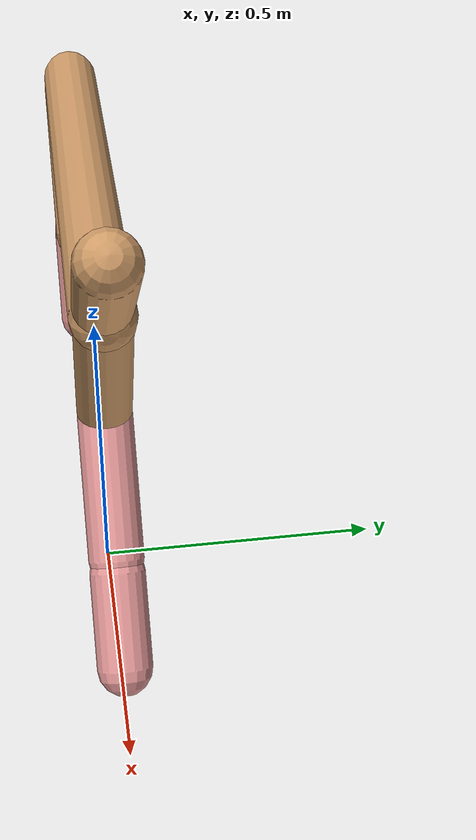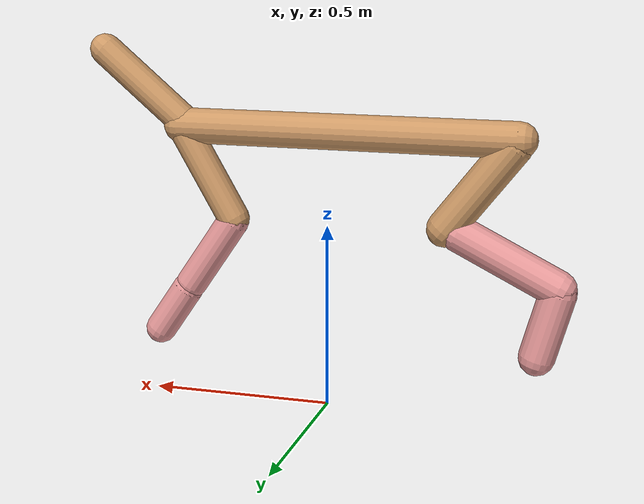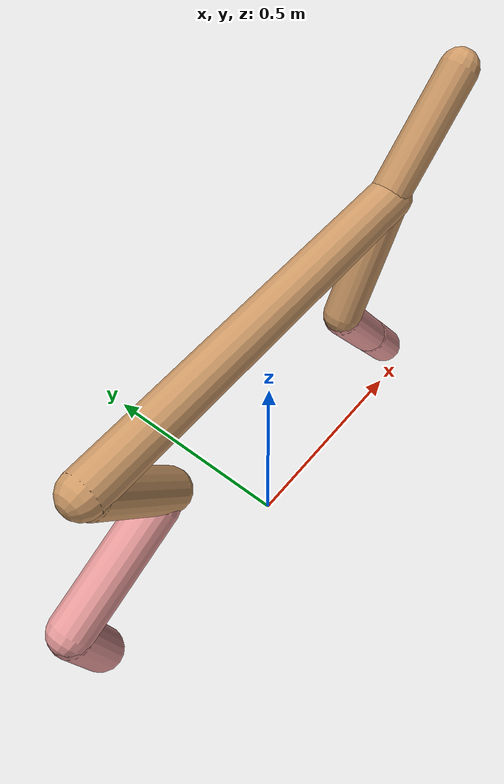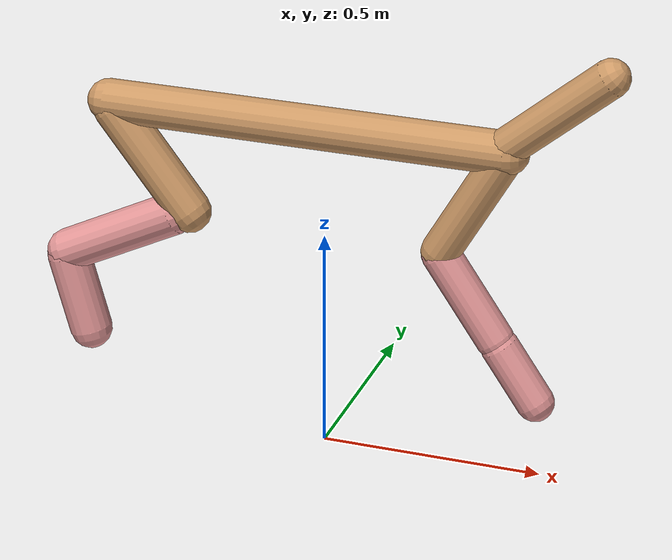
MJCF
<mujoco model="cheetah">
  <compiler angle="radian" coordinate="local" inertiafromgeom="true" settotalmass="14" />
  <default>
    <joint armature=".1" damping=".01" limited="true" solimplimit="0 .8 .03" solreflimit=".02 1" stiffness="8" />
    <geom conaffinity="0" condim="3" contype="1" friction="0.8 .1 .1" rgba="0.8 0.6 .4 1" solimp="0.0 0.8 0.01" solref="0.02 1" />
    <motor ctrllimited="true" ctrlrange="-1 1" />
  </default>
  <size nstack="300000" nuser_geom="1" />
  <option gravity="0 0 -9.81" timestep="0.01" />
  <worldbody>
    <body name="torso" pos="0.0 0.0 0.7533026405768831">
      <joint armature="0" axis="1 0 0" damping="0" limited="false" name="ignorex" pos="0 0 0" stiffness="0" type="slide" />
      <joint armature="0" axis="0 0 1" damping="0" limited="false" name="ignorez" pos="0 0 0" stiffness="0" type="slide" />
      <joint armature="0" axis="0 1 0" damping="0" limited="false" name="ignorey" pos="0 0 0" stiffness="0" type="hinge" />
      <geom fromto="-0.5 0.0 0.0 0.40710068387513537 0.0 0.0" name="torso" size="0.047950711687267965" type="capsule" />
      <geom axisangle="0 1 0 .87" name="head" pos="0.5071006838751354 0.0 0.1" size="0.042703149363812996 0.15" type="capsule" />

      <body name="bthigh" pos="-.5 0 0">
        <joint axis="0 1 0" damping="6" name="bthigh" pos="0 0 0" range="-.52 1.05" stiffness="240" type="hinge" />
        <geom axisangle="0 1 0 -3.8" name="bthigh" pos="0.09810202451033843 0.0 -0.12753263186343997" size="0.048427486312202915 0.14188708874513456" type="capsule" />
        <body name="bshin" pos="0.15620404902067686 0.0 -0.24506526372687992">
          <joint axis="0 1 0" damping="4.5" name="bshin" pos="0 0 0" range="-.785 .785" stiffness="180" type="hinge" />
          <geom axisangle="0 1 0 -2.03" name="bshin" pos="-0.13711971813497797 0.0 -0.06855985906748899" rgba="0.9 0.6 0.6 1" size="0.048427486312202915 0.14677974697772542" type="capsule" />
          <body name="bfoot" pos="-0.27423943626995595 0.0 -0.13711971813497797">
            <joint axis="0 1 0" damping="3" name="bfoot" pos="0 0 0" range="-.4 .785" stiffness="120" type="hinge" />
            <geom axisangle="0 1 0 -.27" name="bfoot" pos="0.02940373464524227 0.0 -0.09507207535295001" rgba="0.9 0.6 0.6 1" size="0.048427486312202915 0.09198197477270793" type="capsule" />
            <inertial mass="10" />
          </body>
        </body>
      </body>
      <body name="fthigh" pos="0.4071006838751354 0.0 0.0">
        <joint axis="0 1 0" damping="4.5" name="fthigh" pos="0 0 0" range="-1.5 0.8" stiffness="180" type="hinge" />
        <geom axisangle="0 1 0 .52" name="fthigh" pos="-0.07373647308649782 0.0 -0.12640538243399624" size="0.042864088108230974 0.14041553472460824" type="capsule" />
        <body name="fshin" pos="-0.14747294617299564 0.0 -0.2528107648679925">
          <joint axis="0 1 0" damping="3" name="fshin" pos="0 0 0" range="-1.2 1.1" stiffness="120" type="hinge" />
          <geom axisangle="0 1 0 -.6" name="fshin" pos="0.06846032260521859 0.0 -0.09479121591491803" rgba="0.9 0.6 0.6 1" size="0.042864088108230974 0.11191012541961257" type="capsule" />
          <body name="ffoot" pos="0.13692064521043718 0.0 -0.18958243182983606">
            <joint axis="0 1 0" damping="1.5" name="ffoot" pos="0 0 0" range="-3.1 -0.3" stiffness="60" type="hinge" />
            <geom axisangle="0 1 0 -.6" name="ffoot" pos="0.04711052983998987 0.0 -0.07328304641776202" rgba="0.9 0.6 0.6 1" size="0.042864088108230974 0.07390291301295171" type="capsule" />
            <inertial mass="10" />
          </body>
        </body>
      </body>
    </body>
  </worldbody>
  <actuator>
    <motor gear="120" joint="bthigh" name="bthigh" />
    <motor gear="90" joint="bshin" name="bshin" />
    <motor gear="60" joint="bfoot" name="bfoot" />
    <motor gear="120" joint="fthigh" name="fthigh" />
    <motor gear="60" joint="fshin" name="fshin" />
    <motor gear="30" joint="ffoot" name="ffoot" />
  </actuator>
</mujoco>
